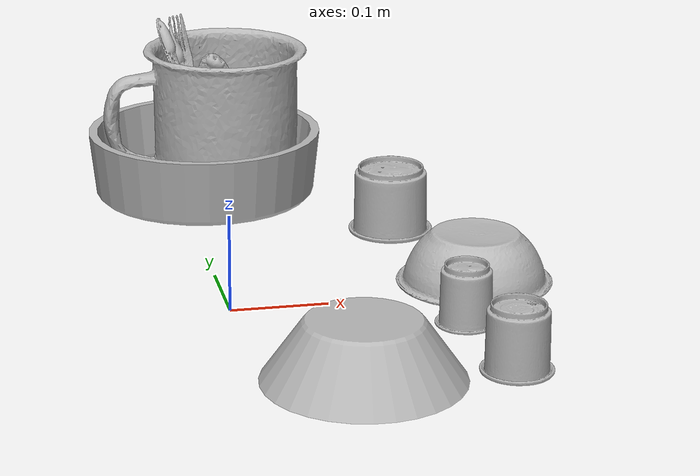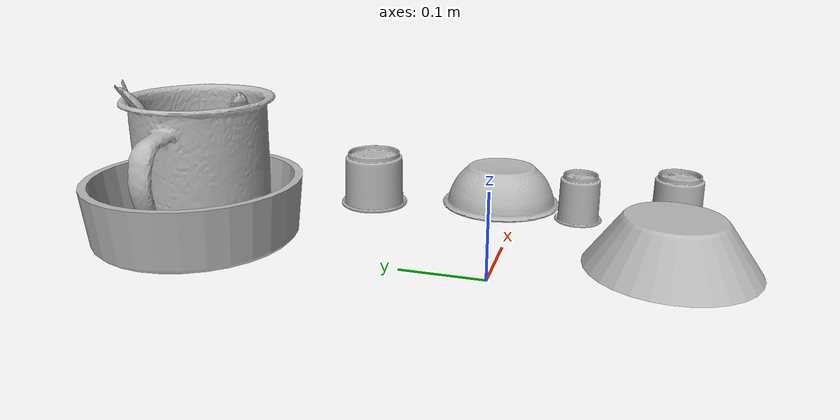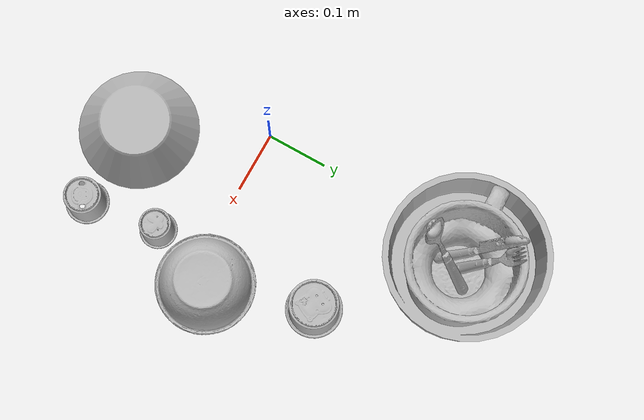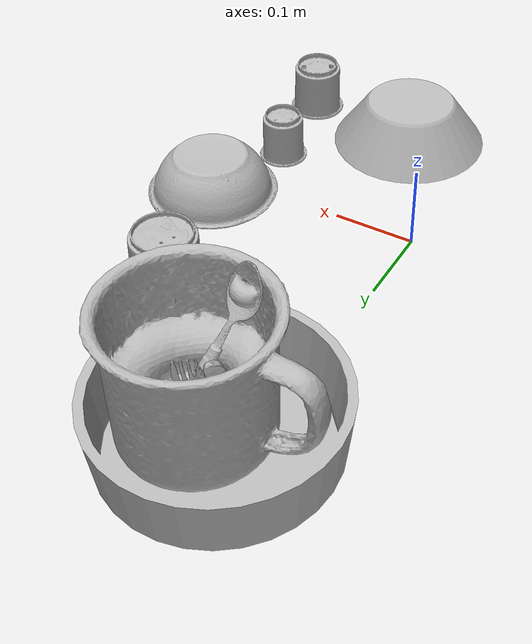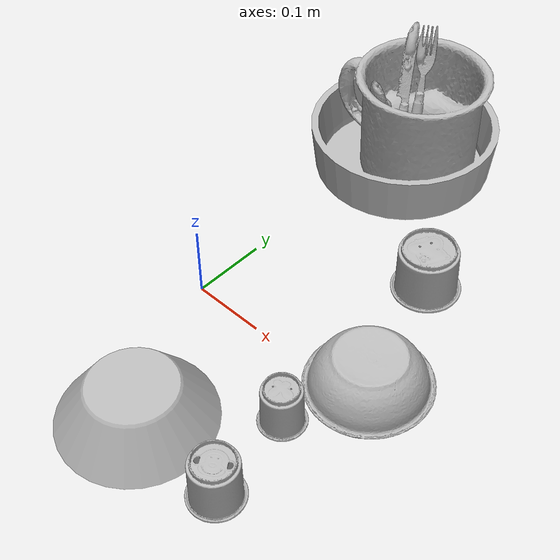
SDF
<?xml version="1.0" ?>
<sdf version="1.4">

  <world name="default">

    <light name="light1" type="point">

      <pose>0 0 1 0 0 0</pose>

      <diffuse>3 3 3 1</diffuse>

      <specular>3 3 3 1</specular>

    </light>

    <light name="light2" type="point">

      <pose>0 0.5 2 0 0 0</pose>

      <diffuse>1 1 1 1</diffuse>

      <specular>1 1 1 1</specular>

    </light>

    <light name="light3" type="point">

      <pose>0 0.5 2 0 0 0</pose>

      <diffuse>3 3 3 1</diffuse>

      <specular>3 3 3 1</specular>

    </light>

    <scene>

      <ambient>0.7 0.7 0.7</ambient>

    </scene>

    <model name="plate1">

      <link name="link_plate1">

        <collision name="default">

          <geometry>

            <mesh>

              <uri>model://pan_tefal/collision_meshes/collision.obj</uri>

              <scale>1.0 1.0 1.0</scale>

            </mesh>

          </geometry>

          <surface>

            <friction>

              <ode>

                <mu>0.5</mu>

                <mu2>0.5</mu2>

              </ode>

            </friction>

          </surface>

        </collision>

        <visual name="default">

          <geometry>

            <mesh>

              <uri>model://pan_tefal/visual_meshes/visual.dae</uri>

              <scale>1.0 1.0 1.0</scale>

            </mesh>

          </geometry>

        </visual>

        <inertial>

          <mass>1.356081485748291</mass>

          <pose>-0.00018001878925133497 3.2792810088722035e-05 -0.008514934219419956 0.000819032333381865 -0.0003301471985614655 -0.33185384828338066</pose>

          <inertia>

            <ixx>0.009360965</ixx>

            <iyy>0.009421317</iyy>

            <izz>0.017231734</izz>

            <ixy>0</ixy>

            <ixz>0</ixz>

            <iyz>0</iyz>

          </inertia>

        </inertial>

      </link>

      <pose>0.030000563710927963 0.3700038194656372 0.03805001825094223 6.227167310836439e-07 7.953300377118853e-07 -0.00026467402051410263</pose>

    </model>

    <model name="cup1">

      <link name="link_cup1">

        <collision name="default">

          <geometry>

            <mesh>

              <uri>model://mug/collision_meshes/collision.obj</uri>

              <scale>2.0 2.0 2.0</scale>

            </mesh>

          </geometry>

          <surface>

            <friction>

              <ode>

                <mu>0.5</mu>

                <mu2>0.5</mu2>

              </ode>

            </friction>

          </surface>

        </collision>

        <visual name="default">

          <geometry>

            <mesh>

              <uri>model://mug/visual_meshes/visual.dae</uri>

              <scale>2.0 2.0 2.0</scale>

            </mesh>

          </geometry>

        </visual>

        <inertial>

          <mass>1.425228476524353</mass>

          <pose>0.019143342971801758 0.0016286519821733236 -0.021894657984375954 -0.12983169455958588 0.08737743422724535 0.05507285753370488</pose>

          <inertia>

            <ixx>0.005662833</ixx>

            <iyy>0.0063250507</iyy>

            <izz>0.0073150056</izz>

            <ixy>0</ixy>

            <ixz>0</ixz>

            <iyz>0</iyz>

          </inertia>

        </inertial>

      </link>

      <pose>0.03161696344614029 0.36907413601875305 0.08950567990541458 0.00033644334980562285 0.002879483432464871 0.017769656870981764</pose>

    </model>

    <model name="silverware1">

      <link name="link_silverware1">

        <collision name="default">

          <geometry>

            <mesh>

              <uri>model://spoon/collision_meshes/collision.obj</uri>

              <scale>1.0 1.0 1.0</scale>

            </mesh>

          </geometry>

          <surface>

            <friction>

              <ode>

                <mu>0.5</mu>

                <mu2>0.5</mu2>

              </ode>

            </friction>

          </surface>

        </collision>

        <visual name="default">

          <geometry>

            <mesh>

              <uri>model://spoon/visual_meshes/visual.dae</uri>

              <scale>1.0 1.0 1.0</scale>

            </mesh>

          </geometry>

        </visual>

        <inertial>

          <mass>0.031423501670360565</mass>

          <pose>-0.005526318680495024 -0.0016034176805987954 -0.000727165665011853 0.035217765619004186 -0.03906586018731898 0.006150610672177042</pose>

          <inertia>

            <ixx>1.7478262e-06</ixx>

            <iyy>0.0001195654</iyy>

            <izz>0.000120427336</izz>

            <ixy>0</ixy>

            <ixz>0</ixz>

            <iyz>0</iyz>

          </inertia>

        </inertial>

      </link>

      <pose>0.05143992230296135 0.3408935070037842 0.09742502868175507 0.1859831078692603 -0.9352495463576008 -1.9867937560758773</pose>

    </model>

    <model name="silverware2">

      <link name="link_silverware2">

        <collision name="default">

          <geometry>

            <mesh>

              <uri>model://fork/collision_meshes/collision.obj</uri>

              <scale>1.0 1.0 1.0</scale>

            </mesh>

          </geometry>

          <surface>

            <friction>

              <ode>

                <mu>0.5</mu>

                <mu2>0.5</mu2>

              </ode>

            </friction>

          </surface>

        </collision>

        <visual name="default">

          <geometry>

            <mesh>

              <uri>model://fork/visual_meshes/visual.dae</uri>

              <scale>1.0 1.0 1.0</scale>

            </mesh>

          </geometry>

        </visual>

        <inertial>

          <mass>0.02368462271988392</mass>

          <pose>-0.02957003191113472 0.00046588238910771906 0.00032188621116802096 -0.013550757689210725 -0.010977831639922976 0.014453892765665301</pose>

          <inertia>

            <ixx>8.3028004e-07</ixx>

            <iyy>6.183376e-05</iyy>

            <izz>6.220513e-05</izz>

            <ixy>0</ixy>

            <ixz>0</ixz>

            <iyz>0</iyz>

          </inertia>

        </inertial>

      </link>

      <pose>0.026485197246074677 0.4046938419342041 0.10402042418718338 0.2029127680849758 -1.0801102628930104 2.0417273942563092</pose>

    </model>

    <model name="silverware3">

      <link name="link_silverware3">

        <collision name="default">

          <geometry>

            <mesh>

              <uri>model://knife/collision_meshes/collision.obj</uri>

              <scale>1.0 1.0 1.0</scale>

            </mesh>

          </geometry>

          <surface>

            <friction>

              <ode>

                <mu>0.5</mu>

                <mu2>0.5</mu2>

              </ode>

            </friction>

          </surface>

        </collision>

        <visual name="default">

          <geometry>

            <mesh>

              <uri>model://knife/visual_meshes/visual.dae</uri>

              <scale>1.0 1.0 1.0</scale>

            </mesh>

          </geometry>

        </visual>

        <inertial>

          <mass>0.023530498147010803</mass>

          <pose>-0.023785250261425972 0.0015275124460458755 5.062020863988437e-05 0.07305757972864607 0.01724841573343299 -0.007409825279630946</pose>

          <inertia>

            <ixx>6.678909e-07</ixx>

            <iyy>9.040038e-05</iyy>

            <izz>9.0615475e-05</izz>

            <ixy>0</ixy>

            <ixz>0</ixz>

            <iyz>0</iyz>

          </inertia>

        </inertial>

      </link>

      <pose>0.016518782824277878 0.379925936460495 0.10550729930400848 -2.780243235519066 -0.951172013175895 2.090068600377572</pose>

    </model>

    <model name="cup3">

      <link name="link_cup3">

        <collision name="default">

          <geometry>

            <mesh>

              <uri>model://b_cups/collision_meshes/collision.obj</uri>

              <scale>1.0 1.0 1.0</scale>

            </mesh>

          </geometry>

          <surface>

            <friction>

              <ode>

                <mu>0.5</mu>

                <mu2>0.5</mu2>

              </ode>

            </friction>

          </surface>

        </collision>

        <visual name="default">

          <geometry>

            <mesh>

              <uri>model://b_cups/visual_meshes/visual.dae</uri>

              <scale>1.0 1.0 1.0</scale>

            </mesh>

          </geometry>

        </visual>

        <inertial>

          <mass>0.033049143850803375</mass>

          <pose>0.0005182002205401659 0.001805859967134893 -0.0013381808530539274 0.11356265792291019 0.03872585472979472 -0.3457023826899558</pose>

          <inertia>

            <ixx>2.1632983e-05</ixx>

            <iyy>2.1222275e-05</iyy>

            <izz>1.8203747e-05</izz>

            <ixy>0</ixy>

            <ixz>0</ixz>

            <iyz>0</iyz>

          </inertia>

        </inertial>

      </link>

      <pose>0.22164589166641235 -0.07872706651687622 0.032155055552721024 3.1415881574539513 1.8449614343119292e-06 -0.23355271426070534</pose>

    </model>

    <model name="cup4">

      <link name="link_cup4">

        <collision name="default">

          <geometry>

            <mesh>

              <uri>model://h_cups/collision_meshes/collision.obj</uri>

              <scale>1.0 1.0 1.0</scale>

            </mesh>

          </geometry>

          <surface>

            <friction>

              <ode>

                <mu>0.5</mu>

                <mu2>0.5</mu2>

              </ode>

            </friction>

          </surface>

        </collision>

        <visual name="default">

          <geometry>

            <mesh>

              <uri>model://h_cups/visual_meshes/visual.dae</uri>

              <scale>1.0 1.0 1.0</scale>

            </mesh>

          </geometry>

        </visual>

        <inertial>

          <mass>0.11347958445549011</mass>

          <pose>-2.7030910132452846e-05 0.00023018615320324898 -0.0018405403243377805 -0.02436217983877791 0.06545222634893223 0.12885210457354207</pose>

          <inertia>

            <ixx>0.0001465536</ixx>

            <iyy>0.00014480477</iyy>

            <izz>0.00015369456</izz>

            <ixy>0</ixy>

            <ixz>0</ixz>

            <iyz>0</iyz>

          </inertia>

        </inertial>

      </link>

      <pose>0.21054086089134216 0.19982153177261353 0.037530094385147095 3.141592176326557 1.7968507752217381e-06 -0.34292472659839324</pose>

    </model>

    <model name="cup5">

      <link name="link_cup5">

        <collision name="default">

          <geometry>

            <mesh>

              <uri>model://d_cups/collision_meshes/collision.obj</uri>

              <scale>1.0 1.0 1.0</scale>

            </mesh>

          </geometry>

          <surface>

            <friction>

              <ode>

                <mu>0.5</mu>

                <mu2>0.5</mu2>

              </ode>

            </friction>

          </surface>

        </collision>

        <visual name="default">

          <geometry>

            <mesh>

              <uri>model://d_cups/visual_meshes/visual.dae</uri>

              <scale>1.0 1.0 1.0</scale>

            </mesh>

          </geometry>

        </visual>

        <inertial>

          <mass>0.039110079407691956</mass>

          <pose>0.0008068050956353545 0.0019117392366752028 -0.0022666517179459333 0.24011224021147495 -0.247107611945545 0.594295747375292</pose>

          <inertia>

            <ixx>3.2744327e-05</ixx>

            <iyy>3.2649565e-05</iyy>

            <izz>2.9639183e-05</izz>

            <ixy>0</ixy>

            <ixz>0</ixz>

            <iyz>0</iyz>

          </inertia>

        </inertial>

      </link>

      <pose>0.23861612379550934 -0.20044314861297607 0.03448901325464249 3.141592635783839 -4.167565319094759e-08 1.137848425588751</pose>

    </model>

    <model name="bowl1">

      <link name="link_bowl1">

        <collision name="default">

          <geometry>

            <mesh>

              <uri>model://bowl/collision_meshes/collision.obj</uri>

              <scale>1.0 1.0 1.0</scale>

            </mesh>

          </geometry>

          <surface>

            <friction>

              <ode>

                <mu>0.5</mu>

                <mu2>0.5</mu2>

              </ode>

            </friction>

          </surface>

        </collision>

        <visual name="default">

          <geometry>

            <mesh>

              <uri>model://bowl/visual_meshes/visual.dae</uri>

              <scale>1.0 1.0 1.0</scale>

            </mesh>

          </geometry>

        </visual>

        <inertial>

          <mass>0.04740063101053238</mass>

          <pose>0.00020445372501853853 -0.001030205050483346 -0.000804265437182039 -0.015764138065403298 0.014546740803255881 0.7140373892972721</pose>

          <inertia>

            <ixx>0.00010888298</ixx>

            <iyy>0.000106450105</iyy>

            <izz>0.00018317858</izz>

            <ixy>0</ixy>

            <ixz>0</ixz>

            <iyz>0</iyz>

          </inertia>

        </inertial>

      </link>

      <pose>0.26007649302482605 0.029999230057001114 0.027247346937656403 -3.1327240776895695 0.0006751664614923219 1.262983724235278</pose>

    </model>

    <model name="bowl2">

      <link name="link_bowl2">

        <collision name="default">

          <geometry>

            <mesh>

              <uri>model://bowl_a/collision_meshes/collision.obj</uri>

              <scale>1.0 1.0 1.0</scale>

            </mesh>

          </geometry>

          <surface>

            <friction>

              <ode>

                <mu>0.5</mu>

                <mu2>0.5</mu2>

              </ode>

            </friction>

          </surface>

        </collision>

        <visual name="default">

          <geometry>

            <mesh>

              <uri>model://bowl_a/visual_meshes/visual.dae</uri>

              <scale>1.0 1.0 1.0</scale>

            </mesh>

          </geometry>

        </visual>

        <inertial>

          <mass>0.4596928358078003</mass>

          <pose>0.0002786756376735866 4.731212538899854e-05 -0.001376529224216938 -0.0009805332698969178 -0.0010938264579112213 -0.1912378887702168</pose>

          <inertia>

            <ixx>0.0013087663</ixx>

            <iyy>0.0013168014</iyy>

            <izz>0.002327691</izz>

            <ixy>0</ixy>

            <ixz>0</ixz>

            <iyz>0</iyz>

          </inertia>

        </inertial>

      </link>

      <pose>0.09448563307523727 -0.19051943719387054 0.02979174070060253 3.1397918131709943 0.0011459183237431444 1.6513168282924533</pose>

    </model>

  </world>

</sdf>
